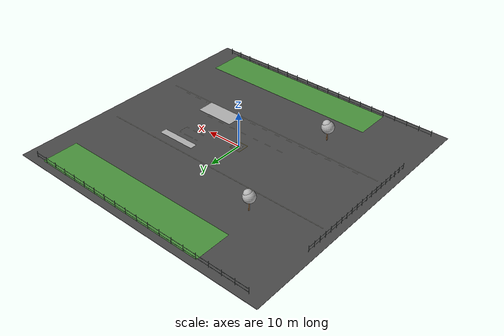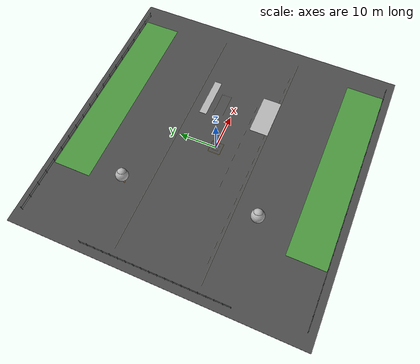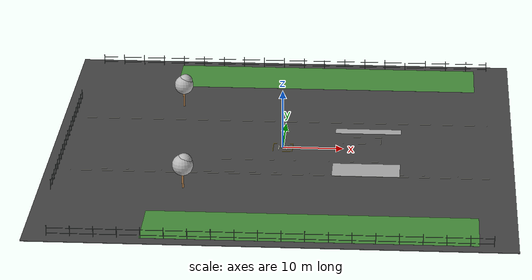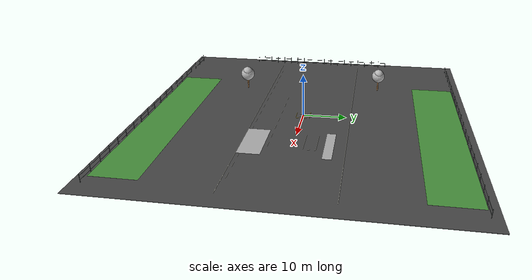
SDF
<sdf version="1.5">
 <world name="default">
  <include><uri>model://sun</uri></include>
  <model name="yard_ground">
   <static>true</static>
   <link name="structure">
    <visual name="solid_ground">
     <pose>0 0 -0.047 0 0 0</pose>
     <geometry><box><size>76 76 0.1</size></box></geometry>
     <material>
      <script>
       <uri>file:///home/fxxk/px4_agent/scene/materials/scripts</uri>
       <uri>file:///home/fxxk/px4_agent/scene/materials/textures</uri>
       <name>Yard/asphalt</name>
      </script>
     </material>
    </visual>
    <collision name="solid_ground_collision">
     <pose>0 0 -0.047 0 0 0</pose>
     <geometry><box><size>76 76 0.1</size></box></geometry>
     <surface><friction><ode><mu>1.0</mu><mu2>1.0</mu2></ode></friction></surface>
    </collision>
    <visual name="west_lawn">
     <pose>-27 0 0.0032 0 0 0</pose>
     <geometry><plane><normal>0 0 1</normal><size>16 70</size></plane></geometry>
     <cast_shadows>false</cast_shadows>
     <material>
      <script>
       <uri>file:///home/fxxk/px4_agent/scene/materials/scripts</uri>
       <uri>file:///home/fxxk/px4_agent/scene/materials/textures</uri>
       <name>Yard/grass</name>
      </script>
     </material>
    </visual>
    <visual name="north_lawn">
     <pose>6 31 0.0032 0 0 0</pose>
     <geometry><plane><normal>0 0 1</normal><size>52 10</size></plane></geometry>
     <cast_shadows>false</cast_shadows>
     <material>
      <script>
       <uri>file:///home/fxxk/px4_agent/scene/materials/scripts</uri>
       <uri>file:///home/fxxk/px4_agent/scene/materials/textures</uri>
       <name>Yard/grass</name>
      </script>
     </material>
    </visual>
    <visual name="south_lawn">
     <pose>6 -31 0.0032 0 0 0</pose>
     <geometry><plane><normal>0 0 1</normal><size>52 10</size></plane></geometry>
     <cast_shadows>false</cast_shadows>
     <material>
      <script>
       <uri>file:///home/fxxk/px4_agent/scene/materials/scripts</uri>
       <uri>file:///home/fxxk/px4_agent/scene/materials/textures</uri>
       <name>Yard/grass</name>
      </script>
     </material>
    </visual>
    <visual name="warehouse_apron">
     <pose>14 -8.5 0.0032 0 0 0</pose>
     <geometry><plane><normal>0 0 1</normal><size>11 5</size></plane></geometry>
     <cast_shadows>false</cast_shadows>
     <material>
      <script>
       <uri>file:///home/fxxk/px4_agent/scene/materials/scripts</uri>
       <uri>file:///home/fxxk/px4_agent/scene/materials/textures</uri>
       <name>Yard/concrete</name>
      </script>
     </material>
    </visual>
    <visual name="office_walkway">
     <pose>14 7.5 0.0032 0 0 0</pose>
     <geometry><plane><normal>0 0 1</normal><size>11 2</size></plane></geometry>
     <cast_shadows>false</cast_shadows>
     <material>
      <script>
       <uri>file:///home/fxxk/px4_agent/scene/materials/scripts</uri>
       <uri>file:///home/fxxk/px4_agent/scene/materials/textures</uri>
       <name>Yard/concrete</name>
      </script>
     </material>
    </visual>
    <visual name="road_edge_0">
     <pose>0 -11 0.0033 0 0 0</pose>
     <geometry><box><size>68 0.1 0.0001</size></box></geometry>
     <cast_shadows>false</cast_shadows>
     <material>
      <ambient>0.85 0.85 0.79 1</ambient>
      <diffuse>0.85 0.85 0.79 1</diffuse>
      <specular>0.04 0.04 0.04 1</specular>
     </material>
    </visual>
    <visual name="road_edge_1">
     <pose>0 11 0.0033 0 0 0</pose>
     <geometry><box><size>68 0.1 0.0001</size></box></geometry>
     <cast_shadows>false</cast_shadows>
     <material>
      <ambient>0.85 0.85 0.79 1</ambient>
      <diffuse>0.85 0.85 0.79 1</diffuse>
      <specular>0.04 0.04 0.04 1</specular>
     </material>
    </visual>
    <visual name="lane_dash_0">
     <pose>-9 -5.25 0.0033 0 0 0</pose>
     <geometry><box><size>1.8 0.09 0.0001</size></box></geometry>
     <cast_shadows>false</cast_shadows>
     <material>
      <ambient>0.85 0.85 0.79 1</ambient>
      <diffuse>0.85 0.85 0.79 1</diffuse>
      <specular>0.04 0.04 0.04 1</specular>
     </material>
    </visual>
    <visual name="lane_dash_1">
     <pose>-5 -5.25 0.0033 0 0 0</pose>
     <geometry><box><size>1.8 0.09 0.0001</size></box></geometry>
     <cast_shadows>false</cast_shadows>
     <material>
      <ambient>0.85 0.85 0.79 1</ambient>
      <diffuse>0.85 0.85 0.79 1</diffuse>
      <specular>0.04 0.04 0.04 1</specular>
     </material>
    </visual>
    <visual name="lane_dash_2">
     <pose>-1 -5.25 0.0033 0 0 0</pose>
     <geometry><box><size>1.8 0.09 0.0001</size></box></geometry>
     <cast_shadows>false</cast_shadows>
     <material>
      <ambient>0.85 0.85 0.79 1</ambient>
      <diffuse>0.85 0.85 0.79 1</diffuse>
      <specular>0.04 0.04 0.04 1</specular>
     </material>
    </visual>
    <visual name="lane_dash_3">
     <pose>3 -5.25 0.0033 0 0 0</pose>
     <geometry><box><size>1.8 0.09 0.0001</size></box></geometry>
     <cast_shadows>false</cast_shadows>
     <material>
      <ambient>0.85 0.85 0.79 1</ambient>
      <diffuse>0.85 0.85 0.79 1</diffuse>
      <specular>0.04 0.04 0.04 1</specular>
     </material>
    </visual>
    <visual name="lane_dash_4">
     <pose>7 -5.25 0.0033 0 0 0</pose>
     <geometry><box><size>1.8 0.09 0.0001</size></box></geometry>
     <cast_shadows>false</cast_shadows>
     <material>
      <ambient>0.85 0.85 0.79 1</ambient>
      <diffuse>0.85 0.85 0.79 1</diffuse>
      <specular>0.04 0.04 0.04 1</specular>
     </material>
    </visual>
    <visual name="lane_dash_5">
     <pose>11 -5.25 0.0033 0 0 0</pose>
     <geometry><box><size>1.8 0.09 0.0001</size></box></geometry>
     <cast_shadows>false</cast_shadows>
     <material>
      <ambient>0.85 0.85 0.79 1</ambient>
      <diffuse>0.85 0.85 0.79 1</diffuse>
      <specular>0.04 0.04 0.04 1</specular>
     </material>
    </visual>
    <visual name="lane_dash_6">
     <pose>15 -5.25 0.0033 0 0 0</pose>
     <geometry><box><size>1.8 0.09 0.0001</size></box></geometry>
     <cast_shadows>false</cast_shadows>
     <material>
      <ambient>0.85 0.85 0.79 1</ambient>
      <diffuse>0.85 0.85 0.79 1</diffuse>
      <specular>0.04 0.04 0.04 1</specular>
     </material>
    </visual>
    <visual name="parking_line_0">
     <pose>13 2.25 0.0033 0 0 0</pose>
     <geometry><box><size>6.4 0.07 0.0001</size></box></geometry>
     <cast_shadows>false</cast_shadows>
     <material>
      <ambient>0.85 0.85 0.79 1</ambient>
      <diffuse>0.85 0.85 0.79 1</diffuse>
      <specular>0.04 0.04 0.04 1</specular>
     </material>
    </visual>
    <visual name="parking_line_1">
     <pose>13 4.95 0.0033 0 0 0</pose>
     <geometry><box><size>6.4 0.07 0.0001</size></box></geometry>
     <cast_shadows>false</cast_shadows>
     <material>
      <ambient>0.85 0.85 0.79 1</ambient>
      <diffuse>0.85 0.85 0.79 1</diffuse>
      <specular>0.04 0.04 0.04 1</specular>
     </material>
    </visual>
    <visual name="parking_back">
     <pose>16.2 3.6 0.0033 0 0 0</pose>
     <geometry><box><size>0.07 2.77 0.0001</size></box></geometry>
     <cast_shadows>false</cast_shadows>
     <material>
      <ambient>0.85 0.85 0.79 1</ambient>
      <diffuse>0.85 0.85 0.79 1</diffuse>
      <specular>0.04 0.04 0.04 1</specular>
     </material>
    </visual>
    <visual name="h_left">
     <pose>-0.65 0 0.0033 0 0 0</pose>
     <geometry><box><size>0.18 1.7 0.0001</size></box></geometry>
     <cast_shadows>false</cast_shadows>
     <material>
      <ambient>0.85 0.85 0.79 1</ambient>
      <diffuse>0.85 0.85 0.79 1</diffuse>
      <specular>0.04 0.04 0.04 1</specular>
     </material>
    </visual>
    <visual name="h_right">
     <pose>0.65 0 0.0033 0 0 0</pose>
     <geometry><box><size>0.18 1.7 0.0001</size></box></geometry>
     <cast_shadows>false</cast_shadows>
     <material>
      <ambient>0.85 0.85 0.79 1</ambient>
      <diffuse>0.85 0.85 0.79 1</diffuse>
      <specular>0.04 0.04 0.04 1</specular>
     </material>
    </visual>
    <visual name="h_middle">
     <pose>0 0 0.0033 0 0 0</pose>
     <geometry><box><size>1.4 0.18 0.0001</size></box></geometry>
     <cast_shadows>false</cast_shadows>
     <material>
      <ambient>0.85 0.85 0.79 1</ambient>
      <diffuse>0.85 0.85 0.79 1</diffuse>
      <specular>0.04 0.04 0.04 1</specular>
     </material>
    </visual>
    <visual name="pad_border_0">
     <pose>0 -1.6 0.0033 0 0 0</pose>
     <geometry><box><size>3.2 0.08 0.0001</size></box></geometry>
     <cast_shadows>false</cast_shadows>
     <material>
      <ambient>0.82 0.7 0.18 1</ambient>
      <diffuse>0.82 0.7 0.18 1</diffuse>
      <specular>0.04 0.04 0.04 1</specular>
     </material>
    </visual>
    <visual name="pad_border_1">
     <pose>0 1.6 0.0033 0 0 0</pose>
     <geometry><box><size>3.2 0.08 0.0001</size></box></geometry>
     <cast_shadows>false</cast_shadows>
     <material>
      <ambient>0.82 0.7 0.18 1</ambient>
      <diffuse>0.82 0.7 0.18 1</diffuse>
      <specular>0.04 0.04 0.04 1</specular>
     </material>
    </visual>
    <visual name="pad_border_2">
     <pose>-1.6 0 0.0033 0 0 0</pose>
     <geometry><box><size>0.08 3.2 0.0001</size></box></geometry>
     <cast_shadows>false</cast_shadows>
     <material>
      <ambient>0.82 0.7 0.18 1</ambient>
      <diffuse>0.82 0.7 0.18 1</diffuse>
      <specular>0.04 0.04 0.04 1</specular>
     </material>
    </visual>
    <visual name="pad_border_3">
     <pose>1.6 0 0.0033 0 0 0</pose>
     <geometry><box><size>0.08 3.2 0.0001</size></box></geometry>
     <cast_shadows>false</cast_shadows>
     <material>
      <ambient>0.82 0.7 0.18 1</ambient>
      <diffuse>0.82 0.7 0.18 1</diffuse>
      <specular>0.04 0.04 0.04 1</specular>
     </material>
    </visual>
    <visual name="spacious_lane_0">
     <pose>-28 -10.25 0.0033 0 0 0</pose>
     <geometry><box><size>1.8 0.09 0.0001</size></box></geometry>
     <cast_shadows>false</cast_shadows>
     <material>
      <ambient>0.85 0.85 0.79 1</ambient>
      <diffuse>0.85 0.85 0.79 1</diffuse>
      <specular>0.04 0.04 0.04 1</specular>
     </material>
    </visual>
    <visual name="spacious_lane_1">
     <pose>-24 -10.25 0.0033 0 0 0</pose>
     <geometry><box><size>1.8 0.09 0.0001</size></box></geometry>
     <cast_shadows>false</cast_shadows>
     <material>
      <ambient>0.85 0.85 0.79 1</ambient>
      <diffuse>0.85 0.85 0.79 1</diffuse>
      <specular>0.04 0.04 0.04 1</specular>
     </material>
    </visual>
    <visual name="spacious_lane_2">
     <pose>-20 -10.25 0.0033 0 0 0</pose>
     <geometry><box><size>1.8 0.09 0.0001</size></box></geometry>
     <cast_shadows>false</cast_shadows>
     <material>
      <ambient>0.85 0.85 0.79 1</ambient>
      <diffuse>0.85 0.85 0.79 1</diffuse>
      <specular>0.04 0.04 0.04 1</specular>
     </material>
    </visual>
    <visual name="spacious_lane_3">
     <pose>-16 -10.25 0.0033 0 0 0</pose>
     <geometry><box><size>1.8 0.09 0.0001</size></box></geometry>
     <cast_shadows>false</cast_shadows>
     <material>
      <ambient>0.85 0.85 0.79 1</ambient>
      <diffuse>0.85 0.85 0.79 1</diffuse>
      <specular>0.04 0.04 0.04 1</specular>
     </material>
    </visual>
    <visual name="spacious_lane_4">
     <pose>-12 -10.25 0.0033 0 0 0</pose>
     <geometry><box><size>1.8 0.09 0.0001</size></box></geometry>
     <cast_shadows>false</cast_shadows>
     <material>
      <ambient>0.85 0.85 0.79 1</ambient>
      <diffuse>0.85 0.85 0.79 1</diffuse>
      <specular>0.04 0.04 0.04 1</specular>
     </material>
    </visual>
    <visual name="spacious_lane_5">
     <pose>-8 -10.25 0.0033 0 0 0</pose>
     <geometry><box><size>1.8 0.09 0.0001</size></box></geometry>
     <cast_shadows>false</cast_shadows>
     <material>
      <ambient>0.85 0.85 0.79 1</ambient>
      <diffuse>0.85 0.85 0.79 1</diffuse>
      <specular>0.04 0.04 0.04 1</specular>
     </material>
    </visual>
    <visual name="spacious_lane_6">
     <pose>-4 -10.25 0.0033 0 0 0</pose>
     <geometry><box><size>1.8 0.09 0.0001</size></box></geometry>
     <cast_shadows>false</cast_shadows>
     <material>
      <ambient>0.85 0.85 0.79 1</ambient>
      <diffuse>0.85 0.85 0.79 1</diffuse>
      <specular>0.04 0.04 0.04 1</specular>
     </material>
    </visual>
    <visual name="spacious_lane_7">
     <pose>0 -10.25 0.0033 0 0 0</pose>
     <geometry><box><size>1.8 0.09 0.0001</size></box></geometry>
     <cast_shadows>false</cast_shadows>
     <material>
      <ambient>0.85 0.85 0.79 1</ambient>
      <diffuse>0.85 0.85 0.79 1</diffuse>
      <specular>0.04 0.04 0.04 1</specular>
     </material>
    </visual>
    <visual name="spacious_lane_8">
     <pose>4 -10.25 0.0033 0 0 0</pose>
     <geometry><box><size>1.8 0.09 0.0001</size></box></geometry>
     <cast_shadows>false</cast_shadows>
     <material>
      <ambient>0.85 0.85 0.79 1</ambient>
      <diffuse>0.85 0.85 0.79 1</diffuse>
      <specular>0.04 0.04 0.04 1</specular>
     </material>
    </visual>
    <visual name="spacious_lane_9">
     <pose>8 -10.25 0.0033 0 0 0</pose>
     <geometry><box><size>1.8 0.09 0.0001</size></box></geometry>
     <cast_shadows>false</cast_shadows>
     <material>
      <ambient>0.85 0.85 0.79 1</ambient>
      <diffuse>0.85 0.85 0.79 1</diffuse>
      <specular>0.04 0.04 0.04 1</specular>
     </material>
    </visual>
    <visual name="spacious_lane_10">
     <pose>12 -10.25 0.0033 0 0 0</pose>
     <geometry><box><size>1.8 0.09 0.0001</size></box></geometry>
     <cast_shadows>false</cast_shadows>
     <material>
      <ambient>0.85 0.85 0.79 1</ambient>
      <diffuse>0.85 0.85 0.79 1</diffuse>
      <specular>0.04 0.04 0.04 1</specular>
     </material>
    </visual>
    <visual name="spacious_lane_11">
     <pose>16 -10.25 0.0033 0 0 0</pose>
     <geometry><box><size>1.8 0.09 0.0001</size></box></geometry>
     <cast_shadows>false</cast_shadows>
     <material>
      <ambient>0.85 0.85 0.79 1</ambient>
      <diffuse>0.85 0.85 0.79 1</diffuse>
      <specular>0.04 0.04 0.04 1</specular>
     </material>
    </visual>
    <visual name="spacious_lane_12">
     <pose>20 -10.25 0.0033 0 0 0</pose>
     <geometry><box><size>1.8 0.09 0.0001</size></box></geometry>
     <cast_shadows>false</cast_shadows>
     <material>
      <ambient>0.85 0.85 0.79 1</ambient>
      <diffuse>0.85 0.85 0.79 1</diffuse>
      <specular>0.04 0.04 0.04 1</specular>
     </material>
    </visual>
    <visual name="spacious_lane_13">
     <pose>24 -10.25 0.0033 0 0 0</pose>
     <geometry><box><size>1.8 0.09 0.0001</size></box></geometry>
     <cast_shadows>false</cast_shadows>
     <material>
      <ambient>0.85 0.85 0.79 1</ambient>
      <diffuse>0.85 0.85 0.79 1</diffuse>
      <specular>0.04 0.04 0.04 1</specular>
     </material>
    </visual>
    <visual name="spacious_lane_14">
     <pose>28 -10.25 0.0033 0 0 0</pose>
     <geometry><box><size>1.8 0.09 0.0001</size></box></geometry>
     <cast_shadows>false</cast_shadows>
     <material>
      <ambient>0.85 0.85 0.79 1</ambient>
      <diffuse>0.85 0.85 0.79 1</diffuse>
      <specular>0.04 0.04 0.04 1</specular>
     </material>
    </visual>
   </link>
  </model>
  <model name="yard_tree_1">
   <static>true</static>
   <pose>-15.0 -17.0 0.003 0 0 0.0</pose>
   <link name="structure">
    <visual name="trunk">
     <pose>0 0 1.6 0 0 0</pose>
     <geometry><cylinder><radius>0.16</radius><length>3.2</length></cylinder></geometry>
     <material>
      <script>
       <uri>file:///home/fxxk/px4_agent/scene/materials/scripts</uri>
       <uri>file:///home/fxxk/px4_agent/scene/materials/textures</uri>
       <name>Yard/wood</name>
      </script>
     </material>
    </visual>
    <collision name="trunk_collision">
     <pose>0 0 1.6 0 0 0</pose>
     <geometry><cylinder><radius>0.16</radius><length>3.2</length></cylinder></geometry>
     <surface><friction><ode><mu>1.0</mu><mu2>1.0</mu2></ode></friction></surface>
    </collision>
    <visual name="crown">
     <pose>0 0 3.95 0 0 0</pose>
     <geometry><sphere><radius>1.7</radius></sphere></geometry>
     <material>
      <script>
       <uri>file:///home/fxxk/px4_agent/scene/materials/scripts</uri>
       <uri>file:///home/fxxk/px4_agent/scene/materials/textures</uri>
       <name>Yard/foliage</name>
      </script>
     </material>
    </visual>
    <collision name="crown_collision">
     <pose>0 0 3.95 0 0 0</pose>
     <geometry><sphere><radius>1.7</radius></sphere></geometry>
     <surface><friction><ode><mu>1.0</mu><mu2>1.0</mu2></ode></friction></surface>
    </collision>
    <visual name="crown_top">
     <pose>0.25 0.06 4.6 0 0 0</pose>
     <geometry><sphere><radius>1.275</radius></sphere></geometry>
     <material>
      <script>
       <uri>file:///home/fxxk/px4_agent/scene/materials/scripts</uri>
       <uri>file:///home/fxxk/px4_agent/scene/materials/textures</uri>
       <name>Yard/foliage</name>
      </script>
     </material>
    </visual>
   </link>
  </model>
  <model name="yard_tree_2">
   <static>true</static>
   <pose>-18.0 17.0 0.003 0 0 0.0</pose>
   <link name="structure">
    <visual name="trunk">
     <pose>0 0 1.6 0 0 0</pose>
     <geometry><cylinder><radius>0.16</radius><length>3.2</length></cylinder></geometry>
     <material>
      <script>
       <uri>file:///home/fxxk/px4_agent/scene/materials/scripts</uri>
       <uri>file:///home/fxxk/px4_agent/scene/materials/textures</uri>
       <name>Yard/wood</name>
      </script>
     </material>
    </visual>
    <collision name="trunk_collision">
     <pose>0 0 1.6 0 0 0</pose>
     <geometry><cylinder><radius>0.16</radius><length>3.2</length></cylinder></geometry>
     <surface><friction><ode><mu>1.0</mu><mu2>1.0</mu2></ode></friction></surface>
    </collision>
    <visual name="crown">
     <pose>0 0 3.95 0 0 0</pose>
     <geometry><sphere><radius>1.6</radius></sphere></geometry>
     <material>
      <script>
       <uri>file:///home/fxxk/px4_agent/scene/materials/scripts</uri>
       <uri>file:///home/fxxk/px4_agent/scene/materials/textures</uri>
       <name>Yard/foliage</name>
      </script>
     </material>
    </visual>
    <collision name="crown_collision">
     <pose>0 0 3.95 0 0 0</pose>
     <geometry><sphere><radius>1.6</radius></sphere></geometry>
     <surface><friction><ode><mu>1.0</mu><mu2>1.0</mu2></ode></friction></surface>
    </collision>
    <visual name="crown_top">
     <pose>0.25 0.06 4.6 0 0 0</pose>
     <geometry><sphere><radius>1.2000000000000002</radius></sphere></geometry>
     <material>
      <script>
       <uri>file:///home/fxxk/px4_agent/scene/materials/scripts</uri>
       <uri>file:///home/fxxk/px4_agent/scene/materials/textures</uri>
       <name>Yard/foliage</name>
      </script>
     </material>
    </visual>
   </link>
  </model>
  <model name="north_fence">
   <static>true</static>
   <pose>0.0 36.0 0.003 0 0 0.0</pose>
   <link name="structure">
    <collision name="fence_collision">
     <pose>0.0 0.0 0.9 0.0 0.0 0.0</pose>
     <geometry><box><size>68.4 0.12 1.8</size></box></geometry>
    </collision>
    <visual name="fence_post_0">
     <pose>-34.2 0.0 0.9 0.0 0.0 0.0</pose>
     <geometry><box><size>0.08 0.08 1.8</size></box></geometry>
     <material>
      <ambient>0.31 0.34 0.33 1</ambient>
      <diffuse>0.31 0.34 0.33 1</diffuse>
      <specular>0.04 0.04 0.04 1</specular>
     </material>
    </visual>
    <visual name="fence_post_1">
     <pose>-30.6 0.0 0.9 0.0 0.0 0.0</pose>
     <geometry><box><size>0.08 0.08 1.8</size></box></geometry>
     <material>
      <ambient>0.31 0.34 0.33 1</ambient>
      <diffuse>0.31 0.34 0.33 1</diffuse>
      <specular>0.04 0.04 0.04 1</specular>
     </material>
    </visual>
    <visual name="fence_post_2">
     <pose>-27.0 0.0 0.9 0.0 0.0 0.0</pose>
     <geometry><box><size>0.08 0.08 1.8</size></box></geometry>
     <material>
      <ambient>0.31 0.34 0.33 1</ambient>
      <diffuse>0.31 0.34 0.33 1</diffuse>
      <specular>0.04 0.04 0.04 1</specular>
     </material>
    </visual>
    <visual name="fence_post_3">
     <pose>-23.400000000000002 0.0 0.9 0.0 0.0 0.0</pose>
     <geometry><box><size>0.08 0.08 1.8</size></box></geometry>
     <material>
      <ambient>0.31 0.34 0.33 1</ambient>
      <diffuse>0.31 0.34 0.33 1</diffuse>
      <specular>0.04 0.04 0.04 1</specular>
     </material>
    </visual>
    <visual name="fence_post_4">
     <pose>-19.8 0.0 0.9 0.0 0.0 0.0</pose>
     <geometry><box><size>0.08 0.08 1.8</size></box></geometry>
     <material>
      <ambient>0.31 0.34 0.33 1</ambient>
      <diffuse>0.31 0.34 0.33 1</diffuse>
      <specular>0.04 0.04 0.04 1</specular>
     </material>
    </visual>
    <visual name="fence_post_5">
     <pose>-16.2 0.0 0.9 0.0 0.0 0.0</pose>
     <geometry><box><size>0.08 0.08 1.8</size></box></geometry>
     <material>
      <ambient>0.31 0.34 0.33 1</ambient>
      <diffuse>0.31 0.34 0.33 1</diffuse>
      <specular>0.04 0.04 0.04 1</specular>
     </material>
    </visual>
    <visual name="fence_post_6">
     <pose>-12.6 0.0 0.9 0.0 0.0 0.0</pose>
     <geometry><box><size>0.08 0.08 1.8</size></box></geometry>
     <material>
      <ambient>0.31 0.34 0.33 1</ambient>
      <diffuse>0.31 0.34 0.33 1</diffuse>
      <specular>0.04 0.04 0.04 1</specular>
     </material>
    </visual>
    <visual name="fence_post_7">
     <pose>-9.0 0.0 0.9 0.0 0.0 0.0</pose>
     <geometry><box><size>0.08 0.08 1.8</size></box></geometry>
     <material>
      <ambient>0.31 0.34 0.33 1</ambient>
      <diffuse>0.31 0.34 0.33 1</diffuse>
      <specular>0.04 0.04 0.04 1</specular>
     </material>
    </visual>
    <visual name="fence_post_8">
     <pose>-5.4 0.0 0.9 0.0 0.0 0.0</pose>
     <geometry><box><size>0.08 0.08 1.8</size></box></geometry>
     <material>
      <ambient>0.31 0.34 0.33 1</ambient>
      <diffuse>0.31 0.34 0.33 1</diffuse>
      <specular>0.04 0.04 0.04 1</specular>
     </material>
    </visual>
    <visual name="fence_post_9">
     <pose>-1.8 0.0 0.9 0.0 0.0 0.0</pose>
     <geometry><box><size>0.08 0.08 1.8</size></box></geometry>
     <material>
      <ambient>0.31 0.34 0.33 1</ambient>
      <diffuse>0.31 0.34 0.33 1</diffuse>
      <specular>0.04 0.04 0.04 1</specular>
     </material>
    </visual>
    <visual name="fence_post_10">
     <pose>1.8 0.0 0.9 0.0 0.0 0.0</pose>
     <geometry><box><size>0.08 0.08 1.8</size></box></geometry>
     <material>
      <ambient>0.31 0.34 0.33 1</ambient>
      <diffuse>0.31 0.34 0.33 1</diffuse>
      <specular>0.04 0.04 0.04 1</specular>
     </material>
    </visual>
    <visual name="fence_post_11">
     <pose>5.4 0.0 0.9 0.0 0.0 0.0</pose>
     <geometry><box><size>0.08 0.08 1.8</size></box></geometry>
     <material>
      <ambient>0.31 0.34 0.33 1</ambient>
      <diffuse>0.31 0.34 0.33 1</diffuse>
      <specular>0.04 0.04 0.04 1</specular>
     </material>
    </visual>
    <visual name="fence_post_12">
     <pose>9.0 0.0 0.9 0.0 0.0 0.0</pose>
     <geometry><box><size>0.08 0.08 1.8</size></box></geometry>
     <material>
      <ambient>0.31 0.34 0.33 1</ambient>
      <diffuse>0.31 0.34 0.33 1</diffuse>
      <specular>0.04 0.04 0.04 1</specular>
     </material>
    </visual>
    <visual name="fence_post_13">
     <pose>12.6 0.0 0.9 0.0 0.0 0.0</pose>
     <geometry><box><size>0.08 0.08 1.8</size></box></geometry>
     <material>
      <ambient>0.31 0.34 0.33 1</ambient>
      <diffuse>0.31 0.34 0.33 1</diffuse>
      <specular>0.04 0.04 0.04 1</specular>
     </material>
    </visual>
    <visual name="fence_post_14">
     <pose>16.2 0.0 0.9 0.0 0.0 0.0</pose>
     <geometry><box><size>0.08 0.08 1.8</size></box></geometry>
     <material>
      <ambient>0.31 0.34 0.33 1</ambient>
      <diffuse>0.31 0.34 0.33 1</diffuse>
      <specular>0.04 0.04 0.04 1</specular>
     </material>
    </visual>
    <visual name="fence_post_15">
     <pose>19.8 0.0 0.9 0.0 0.0 0.0</pose>
     <geometry><box><size>0.08 0.08 1.8</size></box></geometry>
     <material>
      <ambient>0.31 0.34 0.33 1</ambient>
      <diffuse>0.31 0.34 0.33 1</diffuse>
      <specular>0.04 0.04 0.04 1</specular>
     </material>
    </visual>
    <visual name="fence_post_16">
     <pose>23.400000000000002 0.0 0.9 0.0 0.0 0.0</pose>
     <geometry><box><size>0.08 0.08 1.8</size></box></geometry>
     <material>
      <ambient>0.31 0.34 0.33 1</ambient>
      <diffuse>0.31 0.34 0.33 1</diffuse>
      <specular>0.04 0.04 0.04 1</specular>
     </material>
    </visual>
    <visual name="fence_post_17">
     <pose>27.0 0.0 0.9 0.0 0.0 0.0</pose>
     <geometry><box><size>0.08 0.08 1.8</size></box></geometry>
     <material>
      <ambient>0.31 0.34 0.33 1</ambient>
      <diffuse>0.31 0.34 0.33 1</diffuse>
      <specular>0.04 0.04 0.04 1</specular>
     </material>
    </visual>
    <visual name="fence_post_18">
     <pose>30.6 0.0 0.9 0.0 0.0 0.0</pose>
     <geometry><box><size>0.08 0.08 1.8</size></box></geometry>
     <material>
      <ambient>0.31 0.34 0.33 1</ambient>
      <diffuse>0.31 0.34 0.33 1</diffuse>
      <specular>0.04 0.04 0.04 1</specular>
     </material>
    </visual>
    <visual name="fence_post_19">
     <pose>34.2 0.0 0.9 0.0 0.0 0.0</pose>
     <geometry><box><size>0.08 0.08 1.8</size></box></geometry>
     <material>
      <ambient>0.31 0.34 0.33 1</ambient>
      <diffuse>0.31 0.34 0.33 1</diffuse>
      <specular>0.04 0.04 0.04 1</specular>
     </material>
    </visual>
    <visual name="fence_rail_0">
     <pose>0.0 0.0 0.48 0.0 0.0 0.0</pose>
     <geometry><box><size>68.4 0.04 0.055</size></box></geometry>
     <material>
      <ambient>0.35 0.38 0.37 1</ambient>
      <diffuse>0.35 0.38 0.37 1</diffuse>
      <specular>0.04 0.04 0.04 1</specular>
     </material>
    </visual>
    <visual name="fence_rail_1">
     <pose>0.0 0.0 1.35 0.0 0.0 0.0</pose>
     <geometry><box><size>68.4 0.04 0.055</size></box></geometry>
     <material>
      <ambient>0.35 0.38 0.37 1</ambient>
      <diffuse>0.35 0.38 0.37 1</diffuse>
      <specular>0.04 0.04 0.04 1</specular>
     </material>
    </visual>
   </link>
  </model>
  <model name="south_fence">
   <static>true</static>
   <pose>0.0 -36.0 0.003 0 0 0.0</pose>
   <link name="structure">
    <collision name="fence_collision">
     <pose>0.0 0.0 0.9 0.0 0.0 0.0</pose>
     <geometry><box><size>68.4 0.12 1.8</size></box></geometry>
    </collision>
    <visual name="fence_post_0">
     <pose>-34.2 0.0 0.9 0.0 0.0 0.0</pose>
     <geometry><box><size>0.08 0.08 1.8</size></box></geometry>
     <material>
      <ambient>0.31 0.34 0.33 1</ambient>
      <diffuse>0.31 0.34 0.33 1</diffuse>
      <specular>0.04 0.04 0.04 1</specular>
     </material>
    </visual>
    <visual name="fence_post_1">
     <pose>-30.6 0.0 0.9 0.0 0.0 0.0</pose>
     <geometry><box><size>0.08 0.08 1.8</size></box></geometry>
     <material>
      <ambient>0.31 0.34 0.33 1</ambient>
      <diffuse>0.31 0.34 0.33 1</diffuse>
      <specular>0.04 0.04 0.04 1</specular>
     </material>
    </visual>
    <visual name="fence_post_2">
     <pose>-27.0 0.0 0.9 0.0 0.0 0.0</pose>
     <geometry><box><size>0.08 0.08 1.8</size></box></geometry>
     <material>
      <ambient>0.31 0.34 0.33 1</ambient>
      <diffuse>0.31 0.34 0.33 1</diffuse>
      <specular>0.04 0.04 0.04 1</specular>
     </material>
    </visual>
    <visual name="fence_post_3">
     <pose>-23.400000000000002 0.0 0.9 0.0 0.0 0.0</pose>
     <geometry><box><size>0.08 0.08 1.8</size></box></geometry>
     <material>
      <ambient>0.31 0.34 0.33 1</ambient>
      <diffuse>0.31 0.34 0.33 1</diffuse>
      <specular>0.04 0.04 0.04 1</specular>
     </material>
    </visual>
    <visual name="fence_post_4">
     <pose>-19.8 0.0 0.9 0.0 0.0 0.0</pose>
     <geometry><box><size>0.08 0.08 1.8</size></box></geometry>
     <material>
      <ambient>0.31 0.34 0.33 1</ambient>
      <diffuse>0.31 0.34 0.33 1</diffuse>
      <specular>0.04 0.04 0.04 1</specular>
     </material>
    </visual>
    <visual name="fence_post_5">
     <pose>-16.2 0.0 0.9 0.0 0.0 0.0</pose>
     <geometry><box><size>0.08 0.08 1.8</size></box></geometry>
     <material>
      <ambient>0.31 0.34 0.33 1</ambient>
      <diffuse>0.31 0.34 0.33 1</diffuse>
      <specular>0.04 0.04 0.04 1</specular>
     </material>
    </visual>
    <visual name="fence_post_6">
     <pose>-12.6 0.0 0.9 0.0 0.0 0.0</pose>
     <geometry><box><size>0.08 0.08 1.8</size></box></geometry>
     <material>
      <ambient>0.31 0.34 0.33 1</ambient>
      <diffuse>0.31 0.34 0.33 1</diffuse>
      <specular>0.04 0.04 0.04 1</specular>
     </material>
    </visual>
    <visual name="fence_post_7">
     <pose>-9.0 0.0 0.9 0.0 0.0 0.0</pose>
     <geometry><box><size>0.08 0.08 1.8</size></box></geometry>
     <material>
      <ambient>0.31 0.34 0.33 1</ambient>
      <diffuse>0.31 0.34 0.33 1</diffuse>
      <specular>0.04 0.04 0.04 1</specular>
     </material>
    </visual>
    <visual name="fence_post_8">
     <pose>-5.4 0.0 0.9 0.0 0.0 0.0</pose>
     <geometry><box><size>0.08 0.08 1.8</size></box></geometry>
     <material>
      <ambient>0.31 0.34 0.33 1</ambient>
      <diffuse>0.31 0.34 0.33 1</diffuse>
      <specular>0.04 0.04 0.04 1</specular>
     </material>
    </visual>
    <visual name="fence_post_9">
     <pose>-1.8 0.0 0.9 0.0 0.0 0.0</pose>
     <geometry><box><size>0.08 0.08 1.8</size></box></geometry>
     <material>
      <ambient>0.31 0.34 0.33 1</ambient>
      <diffuse>0.31 0.34 0.33 1</diffuse>
      <specular>0.04 0.04 0.04 1</specular>
     </material>
    </visual>
    <visual name="fence_post_10">
     <pose>1.8 0.0 0.9 0.0 0.0 0.0</pose>
     <geometry><box><size>0.08 0.08 1.8</size></box></geometry>
     <material>
      <ambient>0.31 0.34 0.33 1</ambient>
      <diffuse>0.31 0.34 0.33 1</diffuse>
      <specular>0.04 0.04 0.04 1</specular>
     </material>
    </visual>
    <visual name="fence_post_11">
     <pose>5.4 0.0 0.9 0.0 0.0 0.0</pose>
     <geometry><box><size>0.08 0.08 1.8</size></box></geometry>
     <material>
      <ambient>0.31 0.34 0.33 1</ambient>
      <diffuse>0.31 0.34 0.33 1</diffuse>
      <specular>0.04 0.04 0.04 1</specular>
     </material>
    </visual>
    <visual name="fence_post_12">
     <pose>9.0 0.0 0.9 0.0 0.0 0.0</pose>
     <geometry><box><size>0.08 0.08 1.8</size></box></geometry>
     <material>
      <ambient>0.31 0.34 0.33 1</ambient>
      <diffuse>0.31 0.34 0.33 1</diffuse>
      <specular>0.04 0.04 0.04 1</specular>
     </material>
    </visual>
    <visual name="fence_post_13">
     <pose>12.6 0.0 0.9 0.0 0.0 0.0</pose>
     <geometry><box><size>0.08 0.08 1.8</size></box></geometry>
     <material>
      <ambient>0.31 0.34 0.33 1</ambient>
      <diffuse>0.31 0.34 0.33 1</diffuse>
      <specular>0.04 0.04 0.04 1</specular>
     </material>
    </visual>
    <visual name="fence_post_14">
     <pose>16.2 0.0 0.9 0.0 0.0 0.0</pose>
     <geometry><box><size>0.08 0.08 1.8</size></box></geometry>
     <material>
      <ambient>0.31 0.34 0.33 1</ambient>
      <diffuse>0.31 0.34 0.33 1</diffuse>
      <specular>0.04 0.04 0.04 1</specular>
     </material>
    </visual>
    <visual name="fence_post_15">
     <pose>19.8 0.0 0.9 0.0 0.0 0.0</pose>
     <geometry><box><size>0.08 0.08 1.8</size></box></geometry>
     <material>
      <ambient>0.31 0.34 0.33 1</ambient>
      <diffuse>0.31 0.34 0.33 1</diffuse>
      <specular>0.04 0.04 0.04 1</specular>
     </material>
    </visual>
    <visual name="fence_post_16">
     <pose>23.400000000000002 0.0 0.9 0.0 0.0 0.0</pose>
     <geometry><box><size>0.08 0.08 1.8</size></box></geometry>
     <material>
      <ambient>0.31 0.34 0.33 1</ambient>
      <diffuse>0.31 0.34 0.33 1</diffuse>
      <specular>0.04 0.04 0.04 1</specular>
     </material>
    </visual>
    <visual name="fence_post_17">
     <pose>27.0 0.0 0.9 0.0 0.0 0.0</pose>
     <geometry><box><size>0.08 0.08 1.8</size></box></geometry>
     <material>
      <ambient>0.31 0.34 0.33 1</ambient>
      <diffuse>0.31 0.34 0.33 1</diffuse>
      <specular>0.04 0.04 0.04 1</specular>
     </material>
    </visual>
    <visual name="fence_post_18">
     <pose>30.6 0.0 0.9 0.0 0.0 0.0</pose>
     <geometry><box><size>0.08 0.08 1.8</size></box></geometry>
     <material>
      <ambient>0.31 0.34 0.33 1</ambient>
      <diffuse>0.31 0.34 0.33 1</diffuse>
      <specular>0.04 0.04 0.04 1</specular>
     </material>
    </visual>
    <visual name="fence_post_19">
     <pose>34.2 0.0 0.9 0.0 0.0 0.0</pose>
     <geometry><box><size>0.08 0.08 1.8</size></box></geometry>
     <material>
      <ambient>0.31 0.34 0.33 1</ambient>
      <diffuse>0.31 0.34 0.33 1</diffuse>
      <specular>0.04 0.04 0.04 1</specular>
     </material>
    </visual>
    <visual name="fence_rail_0">
     <pose>0.0 0.0 0.48 0.0 0.0 0.0</pose>
     <geometry><box><size>68.4 0.04 0.055</size></box></geometry>
     <material>
      <ambient>0.35 0.38 0.37 1</ambient>
      <diffuse>0.35 0.38 0.37 1</diffuse>
      <specular>0.04 0.04 0.04 1</specular>
     </material>
    </visual>
    <visual name="fence_rail_1">
     <pose>0.0 0.0 1.35 0.0 0.0 0.0</pose>
     <geometry><box><size>68.4 0.04 0.055</size></box></geometry>
     <material>
      <ambient>0.35 0.38 0.37 1</ambient>
      <diffuse>0.35 0.38 0.37 1</diffuse>
      <specular>0.04 0.04 0.04 1</specular>
     </material>
    </visual>
   </link>
  </model>
  <model name="west_fence">
   <static>true</static>
   <pose>-36.0 0.0 0.003 0 0 0.0</pose>
   <link name="structure">
    <collision name="fence_collision">
     <pose>0.0 0.0 0.9 0.0 0.0 0.0</pose>
     <geometry><box><size>0.12 38.0 1.8</size></box></geometry>
    </collision>
    <visual name="fence_post_0">
     <pose>0.0 -19.0 0.9 0.0 0.0 0.0</pose>
     <geometry><box><size>0.08 0.08 1.8</size></box></geometry>
     <material>
      <ambient>0.31 0.34 0.33 1</ambient>
      <diffuse>0.31 0.34 0.33 1</diffuse>
      <specular>0.04 0.04 0.04 1</specular>
     </material>
    </visual>
    <visual name="fence_post_1">
     <pose>0.0 -17.0 0.9 0.0 0.0 0.0</pose>
     <geometry><box><size>0.08 0.08 1.8</size></box></geometry>
     <material>
      <ambient>0.31 0.34 0.33 1</ambient>
      <diffuse>0.31 0.34 0.33 1</diffuse>
      <specular>0.04 0.04 0.04 1</specular>
     </material>
    </visual>
    <visual name="fence_post_2">
     <pose>0.0 -15.0 0.9 0.0 0.0 0.0</pose>
     <geometry><box><size>0.08 0.08 1.8</size></box></geometry>
     <material>
      <ambient>0.31 0.34 0.33 1</ambient>
      <diffuse>0.31 0.34 0.33 1</diffuse>
      <specular>0.04 0.04 0.04 1</specular>
     </material>
    </visual>
    <visual name="fence_post_3">
     <pose>0.0 -13.0 0.9 0.0 0.0 0.0</pose>
     <geometry><box><size>0.08 0.08 1.8</size></box></geometry>
     <material>
      <ambient>0.31 0.34 0.33 1</ambient>
      <diffuse>0.31 0.34 0.33 1</diffuse>
      <specular>0.04 0.04 0.04 1</specular>
     </material>
    </visual>
    <visual name="fence_post_4">
     <pose>0.0 -11.0 0.9 0.0 0.0 0.0</pose>
     <geometry><box><size>0.08 0.08 1.8</size></box></geometry>
     <material>
      <ambient>0.31 0.34 0.33 1</ambient>
      <diffuse>0.31 0.34 0.33 1</diffuse>
      <specular>0.04 0.04 0.04 1</specular>
     </material>
    </visual>
    <visual name="fence_post_5">
     <pose>0.0 -9.0 0.9 0.0 0.0 0.0</pose>
     <geometry><box><size>0.08 0.08 1.8</size></box></geometry>
     <material>
      <ambient>0.31 0.34 0.33 1</ambient>
      <diffuse>0.31 0.34 0.33 1</diffuse>
      <specular>0.04 0.04 0.04 1</specular>
     </material>
    </visual>
    <visual name="fence_post_6">
     <pose>0.0 -7.0 0.9 0.0 0.0 0.0</pose>
     <geometry><box><size>0.08 0.08 1.8</size></box></geometry>
     <material>
      <ambient>0.31 0.34 0.33 1</ambient>
      <diffuse>0.31 0.34 0.33 1</diffuse>
      <specular>0.04 0.04 0.04 1</specular>
     </material>
    </visual>
    <visual name="fence_post_7">
     <pose>0.0 -5.0 0.9 0.0 0.0 0.0</pose>
     <geometry><box><size>0.08 0.08 1.8</size></box></geometry>
     <material>
      <ambient>0.31 0.34 0.33 1</ambient>
      <diffuse>0.31 0.34 0.33 1</diffuse>
      <specular>0.04 0.04 0.04 1</specular>
     </material>
    </visual>
    <visual name="fence_post_8">
     <pose>0.0 -3.0 0.9 0.0 0.0 0.0</pose>
     <geometry><box><size>0.08 0.08 1.8</size></box></geometry>
     <material>
      <ambient>0.31 0.34 0.33 1</ambient>
      <diffuse>0.31 0.34 0.33 1</diffuse>
      <specular>0.04 0.04 0.04 1</specular>
     </material>
    </visual>
    <visual name="fence_post_9">
     <pose>0.0 -1.0 0.9 0.0 0.0 0.0</pose>
     <geometry><box><size>0.08 0.08 1.8</size></box></geometry>
     <material>
      <ambient>0.31 0.34 0.33 1</ambient>
      <diffuse>0.31 0.34 0.33 1</diffuse>
      <specular>0.04 0.04 0.04 1</specular>
     </material>
    </visual>
    <visual name="fence_post_10">
     <pose>0.0 1.0 0.9 0.0 0.0 0.0</pose>
     <geometry><box><size>0.08 0.08 1.8</size></box></geometry>
     <material>
      <ambient>0.31 0.34 0.33 1</ambient>
      <diffuse>0.31 0.34 0.33 1</diffuse>
      <specular>0.04 0.04 0.04 1</specular>
     </material>
    </visual>
    <visual name="fence_post_11">
     <pose>0.0 3.0 0.9 0.0 0.0 0.0</pose>
     <geometry><box><size>0.08 0.08 1.8</size></box></geometry>
     <material>
      <ambient>0.31 0.34 0.33 1</ambient>
      <diffuse>0.31 0.34 0.33 1</diffuse>
      <specular>0.04 0.04 0.04 1</specular>
     </material>
    </visual>
    <visual name="fence_post_12">
     <pose>0.0 5.0 0.9 0.0 0.0 0.0</pose>
     <geometry><box><size>0.08 0.08 1.8</size></box></geometry>
     <material>
      <ambient>0.31 0.34 0.33 1</ambient>
      <diffuse>0.31 0.34 0.33 1</diffuse>
      <specular>0.04 0.04 0.04 1</specular>
     </material>
    </visual>
    <visual name="fence_post_13">
     <pose>0.0 7.0 0.9 0.0 0.0 0.0</pose>
     <geometry><box><size>0.08 0.08 1.8</size></box></geometry>
     <material>
      <ambient>0.31 0.34 0.33 1</ambient>
      <diffuse>0.31 0.34 0.33 1</diffuse>
      <specular>0.04 0.04 0.04 1</specular>
     </material>
    </visual>
    <visual name="fence_post_14">
     <pose>0.0 9.0 0.9 0.0 0.0 0.0</pose>
     <geometry><box><size>0.08 0.08 1.8</size></box></geometry>
     <material>
      <ambient>0.31 0.34 0.33 1</ambient>
      <diffuse>0.31 0.34 0.33 1</diffuse>
      <specular>0.04 0.04 0.04 1</specular>
     </material>
    </visual>
    <visual name="fence_post_15">
     <pose>0.0 11.0 0.9 0.0 0.0 0.0</pose>
     <geometry><box><size>0.08 0.08 1.8</size></box></geometry>
     <material>
      <ambient>0.31 0.34 0.33 1</ambient>
      <diffuse>0.31 0.34 0.33 1</diffuse>
      <specular>0.04 0.04 0.04 1</specular>
     </material>
    </visual>
    <visual name="fence_post_16">
     <pose>0.0 13.0 0.9 0.0 0.0 0.0</pose>
     <geometry><box><size>0.08 0.08 1.8</size></box></geometry>
     <material>
      <ambient>0.31 0.34 0.33 1</ambient>
      <diffuse>0.31 0.34 0.33 1</diffuse>
      <specular>0.04 0.04 0.04 1</specular>
     </material>
    </visual>
    <visual name="fence_post_17">
     <pose>0.0 15.0 0.9 0.0 0.0 0.0</pose>
     <geometry><box><size>0.08 0.08 1.8</size></box></geometry>
     <material>
      <ambient>0.31 0.34 0.33 1</ambient>
      <diffuse>0.31 0.34 0.33 1</diffuse>
      <specular>0.04 0.04 0.04 1</specular>
     </material>
    </visual>
    <visual name="fence_post_18">
     <pose>0.0 17.0 0.9 0.0 0.0 0.0</pose>
     <geometry><box><size>0.08 0.08 1.8</size></box></geometry>
     <material>
      <ambient>0.31 0.34 0.33 1</ambient>
      <diffuse>0.31 0.34 0.33 1</diffuse>
      <specular>0.04 0.04 0.04 1</specular>
     </material>
    </visual>
    <visual name="fence_post_19">
     <pose>0.0 19.0 0.9 0.0 0.0 0.0</pose>
     <geometry><box><size>0.08 0.08 1.8</size></box></geometry>
     <material>
      <ambient>0.31 0.34 0.33 1</ambient>
      <diffuse>0.31 0.34 0.33 1</diffuse>
      <specular>0.04 0.04 0.04 1</specular>
     </material>
    </visual>
    <visual name="fence_rail_0">
     <pose>0.0 0.0 0.48 0.0 0.0 0.0</pose>
     <geometry><box><size>0.04 38.0 0.055</size></box></geometry>
     <material>
      <ambient>0.35 0.38 0.37 1</ambient>
      <diffuse>0.35 0.38 0.37 1</diffuse>
      <specular>0.04 0.04 0.04 1</specular>
     </material>
    </visual>
    <visual name="fence_rail_1">
     <pose>0.0 0.0 1.35 0.0 0.0 0.0</pose>
     <geometry><box><size>0.04 38.0 0.055</size></box></geometry>
     <material>
      <ambient>0.35 0.38 0.37 1</ambient>
      <diffuse>0.35 0.38 0.37 1</diffuse>
      <specular>0.04 0.04 0.04 1</specular>
     </material>
    </visual>
   </link>
  </model>
 </world>
</sdf>
